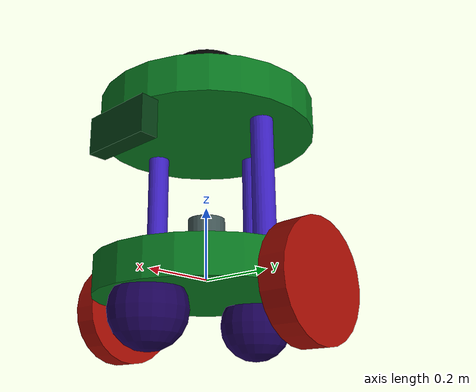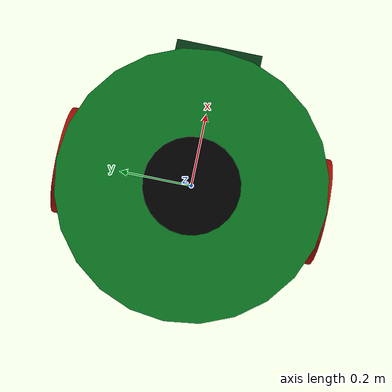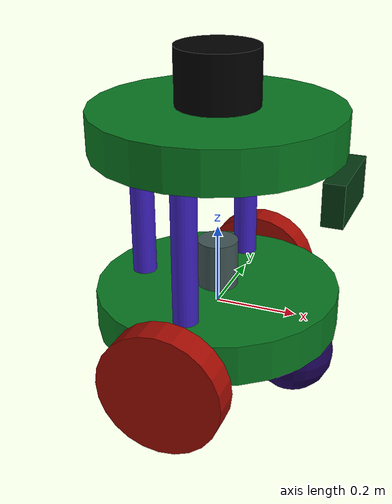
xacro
<?xml version='1.0' encoding='utf-8'?>
<robot name="beetlebot" xmlns:xacro="http://www.ros.org/wiki/xacro">

    <xacro:arg name="namespace" default="" />
    <xacro:property name="namespace" value="$(arg namespace)" />
    <xacro:include filename="$(find beetlebot_description)/urdf/beetlebot.gazebo" />

    <material name="base_link_material">
        <color rgba="0.033104766565152086 0.46778379610254284 0.12477181755144427 1" />
    </material>
    <material name="wheel_right_material">
        <color rgba="0.6375968739867731 0.04373502925049377 0.008023192982520563 1" />
    </material>
    <material name="wheel_left_material">
        <color rgba="0.6375968739867731 0.04373502925049377 0.008023192982520563 1" />
    </material>
    <material name="top_base_material">
        <color rgba="0.033104766565152086 0.46778379610254284 0.12477181755144427 1" />
    </material>
    <material name="front_caster_material">
        <color rgba="0.10702310296918527 0.0069954101845983935 0.3371636150376657 1" />
    </material>

    <material name="rear_caster_material">
        <color rgba="0.10702310296918527 0.0069954101845983935 0.3371636150376657 1" />
    </material>

    <material name="right_bar_material">
        <color rgba="0.23839757380151394 0.12743768042608497 0.7529422167708612 1" />
    </material>

    <material name="left_bar_material">
        <color rgba="0.23839757380151394 0.12743768042608497 0.7529422167708612 1" />
    </material>
    <material name="rear_bar_material">
        <color rgba="0.23839757380151394 0.12743768042608497 0.7529422167708612 1" />
    </material>

    <material name="lidar_material">
        <color rgba="0 0 0 1" />
    </material>

    <material name="camera_material">
        <color rgba="0.015996293361446288 0.22696587349938613 0.07036009568874305 1" />
    </material>

    <material name="imu_material">
        <color rgba="0.25 0.33 0.33 1" />
    </material>

    <!-- Base Link -->
    <link name="base_link">
        <visual>
            <origin xyz="0 0 0" rpy="0 0 0" />
            <geometry>
                <cylinder radius="0.3" length="0.1" />
            </geometry>
            <material name="base_link_material" />
        </visual>
        <collision>
            <origin xyz="0 0 0" rpy="0 0 0" />
            <geometry>
                <cylinder radius="0.3" length="0.1" />
            </geometry>
        </collision>
        <inertial>
            <origin xyz="0 0 0.3" rpy="0 0 0" />
            <mass value="5" />
            <inertia ixx="1.5417" ixy="0" ixz="0" iyy="3.467" iyz="0" izz="4.742" />
        </inertial>
    </link>

    <!-- Right Wheel Link -->
    <link name="wheel_right">
        <visual>
            <origin xyz="0 0 0" rpy="0 0 0" />
            <geometry>
                <cylinder radius="0.15" length="0.07" />
            </geometry>
            <material name="wheel_right_material" />
        </visual>
        <collision>
            <origin xyz="0 0 0" rpy="0 0 0" />
            <geometry>
                <cylinder radius="0.15" length="0.07" />
            </geometry>
        </collision>
        <inertial>
            <origin xyz="0 0 0" rpy="0 0 0" />
            <mass value="1" />
            <inertia ixx="0.002526666666667" ixy="0" ixz="0" iyy="0.002526666666667" iyz="0"
                izz="0.005" />
        </inertial>
    </link>

    <!-- Right Wheel Joint -->
    <joint name="base_link_to_wheel_right" type="continuous">
        <parent link="base_link" />
        <child link="wheel_right" />
        <origin xyz="0 -0.33 -0.05" rpy="1.5707963267948963 0 0" />
        <axis xyz="0 0 -1" />
    </joint>

    <!-- Left Wheel Link -->
    <link name="wheel_left">
        <visual>
            <origin xyz="0 0 0" rpy="0 0 0" />
            <geometry>
                <cylinder radius="0.15" length="0.07" />
            </geometry>
            <material name="wheel_left_material" />
        </visual>
        <collision>
            <origin xyz="0 0 0" rpy="0 0 0" />
            <geometry>
                <cylinder radius="0.15" length="0.07" />
            </geometry>
        </collision>
        <inertial>
            <origin xyz="0 0 0" rpy="0 0 0" />
            <mass value="1" />
            <inertia ixx="0.002526666666667" ixy="0" ixz="0" iyy="0.002526666666667" iyz="0"
                izz="0.005" />
        </inertial>
    </link>

    <!-- Left Wheel Joint -->
    <joint name="base_link_to_wheel_left" type="continuous">
        <parent link="base_link" />
        <child link="wheel_left" />
        <origin xyz="0 0.33 -0.05" rpy="1.5707963267948963 0 0" />
        <axis xyz="0 0 -1" />
    </joint>

    <!-- Top Base Link -->
    <link name="top_base">
        <visual>
            <origin xyz="0 0 0" rpy="0 0 0" />
            <geometry>
                <cylinder radius="0.3" length="0.1" />
            </geometry>
            <material name="top_base_material" />
        </visual>
        <collision>
            <origin xyz="0 0 0" rpy="0 0 0" />
            <geometry>
                <cylinder radius="0.3" length="0.1" />
            </geometry>
        </collision>
        <inertial>
            <origin xyz="0 0 0" rpy="0 0 0" />
            <mass value="1" />
            <inertia ixx="0.002526666666667" ixy="0" ixz="0" iyy="0.002526666666667" iyz="0"
                izz="0.005" />
        </inertial>
    </link>

    <!-- Top Base Joint -->
    <joint name="base_link_to_top_base" type="fixed">
        <parent link="base_link" />
        <child link="top_base" />
        <origin xyz="0 0 0.45" rpy="0 0 0" />
    </joint>

    <!-- Front Caster Link -->
    <link name="front_caster">
        <visual>
            <origin xyz="0 0 0" rpy="0 0 0" />
            <geometry>
                <sphere radius="0.1" />
            </geometry>
            <material name="front_caster_material" />
        </visual>
        <collision>
            <origin xyz="0 0 0" rpy="0 0 0" />
            <geometry>
                <sphere radius="0.1" />
            </geometry>
        </collision>
        <inertial>
            <origin xyz="0 0 0" rpy="0 0 0" />
            <mass value="1" />
            <inertia ixx="0.002526666666667" ixy="0" ixz="0" iyy="0.002526666666667" iyz="0"
                izz="0.005" />
        </inertial>
    </link>

    <!-- Front Caster Joint -->
    <joint name="base_link_to_front_caster" type="fixed">
        <parent link="base_link" />
        <child link="front_caster" />
        <origin xyz="0.2 0 -0.1" rpy="0 0 0" />
        <axis xyz="0 1 0" />
    </joint>

    <!-- Rear Caster Link -->
    <link name="rear_caster">
        <visual>
            <origin xyz="0 0 0" rpy="0 0 0" />
            <geometry>
                <sphere radius="0.1" />
            </geometry>
            <material name="rear_caster_material" />
        </visual>
        <collision>
            <origin xyz="0 0 0" rpy="0 0 0" />
            <geometry>
                <sphere radius="0.1" />
            </geometry>
        </collision>
        <inertial>
            <origin xyz="0 0 0" rpy="0 0 0" />
            <mass value="1" />
            <inertia ixx="0.4" ixy="0" ixz="0" iyy="0.4" iyz="0" izz="0.4" />
        </inertial>
    </link>

    <!-- Rear Caster Joint -->
    <joint name="base_link_to_rear_caster" type="fixed">
        <parent link="base_link" />
        <child link="rear_caster" />
        <origin xyz="-0.2 0 -0.1" rpy="0 0 0" />
        <axis xyz="0 1 0" />
    </joint>

    <!-- Right Bar Link -->
    <link name="right_bar">
        <visual>
            <origin xyz="0 0 0" rpy="0 0 0" />
            <geometry>
                <cylinder radius="0.03" length="0.5" />
            </geometry>
            <material name="right_bar_material" />
        </visual>
        <collision>
            <origin xyz="0 0 0" rpy="0 0 0" />
            <geometry>
                <cylinder radius="0.03" length="0.5" />
            </geometry>
        </collision>
        <inertial>
            <origin xyz="0 0 0" rpy="0 0 0" />
            <mass value="1" />
            <inertia ixx="0.3333333333333333" ixy="0" ixz="0" iyy="0.5" iyz="0"
                izz="0.3333333333333333" />
        </inertial>
    </link>

    <!-- Right Bar Joint -->
    <joint name="base_link_to_right_bar" type="fixed">
        <parent link="base_link" />
        <child link="right_bar" />
        <origin xyz="0 0.2 0.2058808723746403" rpy="0 0 0" />
    </joint>

    <!-- Left Bar Link -->
    <link name="left_bar">
        <visual>
            <origin xyz="0 0 0" rpy="0 0 0" />
            <geometry>
                <cylinder radius="0.03" length="0.5" />
            </geometry>
            <material name="left_bar_material" />
        </visual>
        <collision>
            <origin xyz="0 0 0" rpy="0 0 0" />
            <geometry>
                <cylinder radius="0.03" length="0.5" />
            </geometry>
        </collision>
        <inertial>
            <origin xyz="0 0 0" rpy="0 0 0" />
            <mass value="1" />
            <inertia ixx="0.3333333333333333" ixy="0" ixz="0" iyy="0.5" iyz="0"
                izz="0.3333333333333333" />
        </inertial>
    </link>

    <!-- Left Bar Joint -->
    <joint name="base_link_to_left_bar" type="fixed">
        <parent link="base_link" />
        <child link="left_bar" />
        <origin xyz="0 -0.2 0.2058808723746403" rpy="0 0 0" />
    </joint>

    <!-- Rear Bar Link -->
    <link name="rear_bar">
        <visual>
            <origin xyz="0 0 0" rpy="0 0 0" />
            <geometry>
                <cylinder radius="0.03" length="0.5" />
            </geometry>
            <material name="rear_bar_material" />
        </visual>
        <collision>
            <origin xyz="0 0 0" rpy="0 0 0" />
            <geometry>
                <cylinder radius="0.03" length="0.5" />
            </geometry>
        </collision>
        <inertial>
            <origin xyz="0 0 0" rpy="0 0 0" />
            <mass value="1" />
            <inertia ixx="0.3333333333333333" ixy="0" ixz="0" iyy="0.5" iyz="0"
                izz="0.3333333333333333" />
        </inertial>
    </link>

    <!-- Rear Bar Joint -->
    <joint name="base_link_to_rear_bar" type="fixed">
        <parent link="base_link" />
        <child link="rear_bar" />
        <origin xyz="-0.2 0 0.2058808723746403" rpy="0 0 0" />
    </joint>

    <!-- Lidar Link -->
    <link name="lidar">
        <visual>
            <origin xyz="0 0 0" rpy="0 0 0" />
            <geometry>
                <cylinder radius="0.1" length="0.13538975482266932" />
            </geometry>
            <!-- TODO later line 246 - https://github.com/gazebosim/docs/blob/master/fortress/tutorials/spawn_urdf/rrbot.urdf-->
            <material name="lidar_material" />
        </visual>
        <collision>
            <origin xyz="0 0 0" rpy="0 0 0" />
            <geometry>
                <cylinder radius="0.1" length="0.13538975482266932" />
            </geometry>
        </collision>
        <inertial>
            <origin xyz="0 0 0" rpy="0 0 0" />
            <mass value="1" />
            <inertia ixx="0.3333333333333333" ixy="0" ixz="0" iyy="0.5" iyz="0"
                izz="0.3333333333333333" />
        </inertial>
    </link>

    <!-- Lidar Joint -->
    <joint name="base_link_to_lidar" type="fixed">
        <parent link="base_link" />
        <child link="lidar" />
        <origin xyz="0 0 0.57" rpy="0 0 0" />
    </joint>

    <!-- Camera Link -->
    <link name="camera">
        <visual>
            <origin xyz="0 0 0" rpy="0 0 0" />
            <geometry>
                <box size="0.05 0.2 0.1" />
            </geometry>
            <material name="camera_material" />
        </visual>
        <collision>
            <origin xyz="0 0 0" rpy="0 0 0" />
            <geometry>
                <box size="0.05 0.2 0.1" />
            </geometry>
        </collision>
        <inertial>
            <origin xyz="0 0 0" rpy="0 0 0" />
            <mass value="1" />
            <inertia ixx="0.16666666666666666" ixy="0" ixz="0" iyy="0.16666666666666666" iyz="0"
                izz="0.16666666666666666" />
        </inertial>
    </link>

    <!-- Camera Joint -->
    <joint name="base_link_to_camera" type="revolute">
        <parent link="base_link" />
        <child link="camera" />
        <origin xyz="0.3 0 0.34" rpy="0 0 0" />
        <axis xyz="0 1 0" />

        <limit lower="-1.14" upper="1.14" velocity="3.14" effort="10.0" />
    </joint>

    <link name="imu_link">
        <visual>
            <origin xyz="0 0 0" rpy="0 0 0" />
            <geometry>
                <cylinder radius="0.05" length="0.135" />
            </geometry>
            <material name="imu_material" />
        </visual>
        <collision>
            <origin xyz="0 0 0" rpy="0 0 0" />
            <geometry>
                <cylinder radius="0.025" length="0.075" />
            </geometry>
        </collision>
        <inertial>
            <origin xyz="0 0 0" rpy="0 0 0" />
            <mass value="1" />
            <inertia ixx="0.333" ixy="0" ixz="0" iyy="0.5" iyz="0" izz="0.333" />
        </inertial>
    </link>

    <joint name="base_link_to_imu" type="fixed">
        <parent link="base_link" />
        <child link="imu_link" />
        <origin xyz="0 0 0.1" rpy="0 0 0" />
    </joint>

    <gazebo reference="imu_link">
        <sensor name="imu_sensor" type="imu">
            <ignition_frame_id>imu_link</ignition_frame_id>
            <plugin filename="ignition-gazebo-imu-system" name="ignition::gazebo::systems::Imu">
            </plugin>
            <topic>$(arg namespace)imu</topic>
            <always_on>true</always_on>
            <update_rate>100</update_rate>
            <visualize>true</visualize>
            <imu>
                <angular_velocity>
                    <x>
                        <noise type="gaussian">
                            <mean>0.0</mean>
                            <stddev>2e-4</stddev>
                            <bias_mean>0.0000075</bias_mean>
                            <bias_stddev>0.0000008</bias_stddev>
                        </noise>
                    </x>
                    <y>
                        <noise type="gaussian">
                            <mean>0.0</mean>
                            <stddev>2e-4</stddev>
                            <bias_mean>0.0000075</bias_mean>
                            <bias_stddev>0.0000008</bias_stddev>
                        </noise>
                    </y>
                    <z>
                        <noise type="gaussian">
                            <mean>0.0</mean>
                            <stddev>2e-4</stddev>
                            <bias_mean>0.0000075</bias_mean>
                            <bias_stddev>0.0000008</bias_stddev>
                        </noise>
                    </z>
                </angular_velocity>
                <linear_acceleration>
                    <x>
                        <noise type="gaussian">
                            <mean>0.0</mean>
                            <stddev>1.7e-3</stddev>
                            <bias_mean>0.01</bias_mean>
                            <bias_stddev>0.001</bias_stddev>
                        </noise>
                    </x>
                    <y>
                        <noise type="gaussian">
                            <mean>0.0</mean>
                            <stddev>1.7e-3</stddev>
                            <bias_mean>0.01</bias_mean>
                            <bias_stddev>0.001</bias_stddev>
                        </noise>
                    </y>
                    <z>
                        <noise type="gaussian">
                            <mean>0.0</mean>
                            <stddev>1.7e-3</stddev>
                            <bias_mean>0.01</bias_mean>
                            <bias_stddev>0.001</bias_stddev>
                        </noise>
                    </z>
                </linear_acceleration>
            </imu>
        </sensor>
    </gazebo>
</robot>
